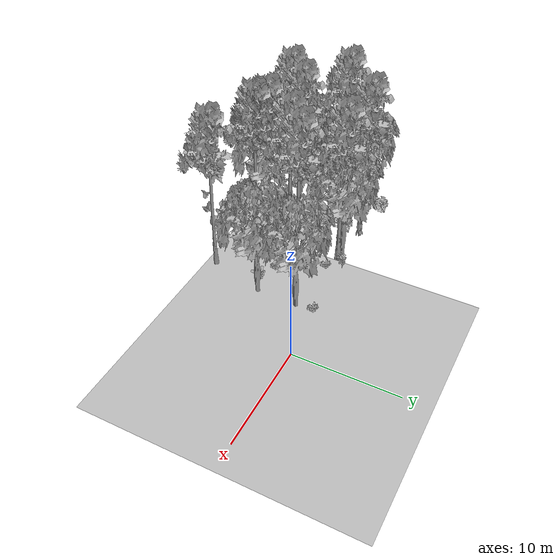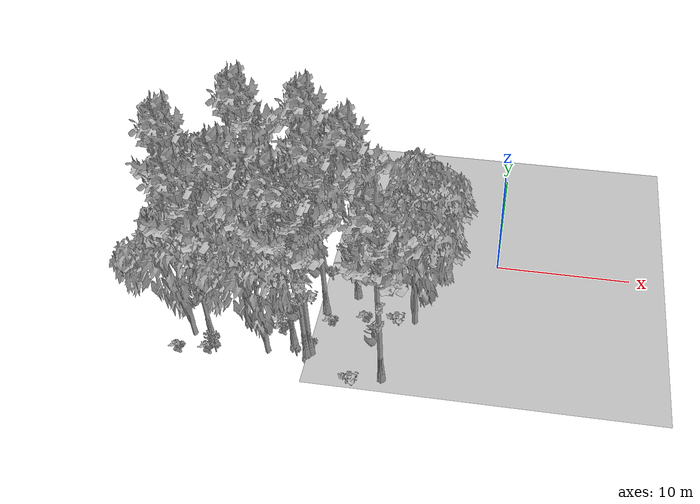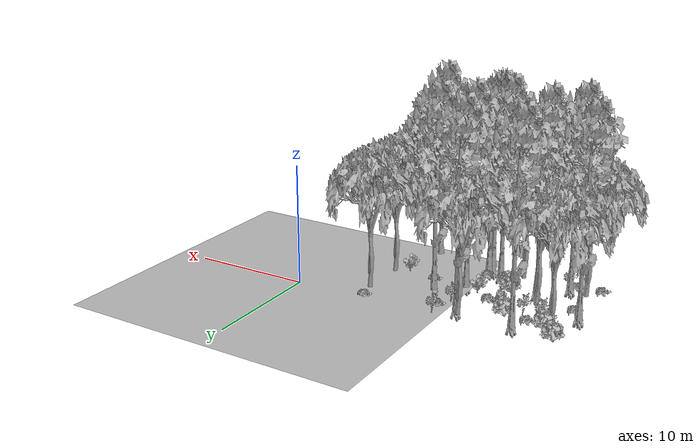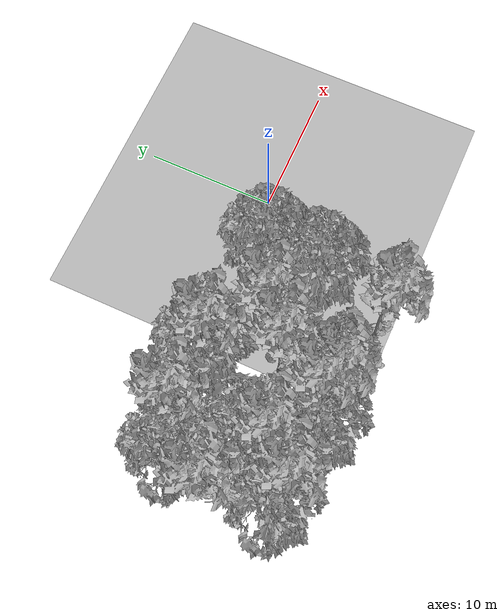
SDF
<sdf version="1.7">
 <world name="default">
  <model name="ground_plane">
   <static>1</static>
   <link name="link">
    <collision name="collision">
     <pose>-50 0 0 0 -0 0</pose>
     <geometry><plane><normal>0 0 1</normal><size>80 80</size></plane></geometry>
     <surface><contact><ode><min_depth>0.01</min_depth><max_vel>0</max_vel></ode></contact></surface>
    </collision>
    <visual name="grass">
     <cast_shadows>0</cast_shadows>
     <geometry>
      <mesh>
       <scale>0.46714285714285714 0.46714285714285714 0.1</scale>
       <uri>file://grass_plane/meshes/grass_plane.dae</uri>
      </mesh>
     </geometry>
    </visual>
   </link>
  </model>
  <model name="Tree 40">
   <static>1</static>
   <pose>-17.46964177701019 -7.906916988267902 0 1.57079 -0 0</pose>
   <link name="link">
    <collision name="collision">
     <geometry><mesh><scale>3.5 5 3.5</scale><uri>model://tree_9/meshes/tree_9.obj</uri></mesh></geometry>
    </collision>
    <visual name="visual">
     <geometry><mesh><scale>3.5 5 3.5</scale><uri>model://tree_9/meshes/tree_9.obj</uri></mesh></geometry>
    </visual>
   </link>
  </model>
  <model name="Tree 52">
   <static>1</static>
   <pose>-5.46918117928891 -2.325376790559446 0 1.57079 -0 0</pose>
   <link name="link">
    <collision name="collision">
     <geometry><mesh><scale>3.5 5 3.5</scale><uri>model://tree_2/meshes/tree_2.obj</uri></mesh></geometry>
    </collision>
    <visual name="visual">
     <geometry><mesh><scale>3.5 5 3.5</scale><uri>model://tree_2/meshes/tree_2.obj</uri></mesh></geometry>
    </visual>
   </link>
  </model>
  <model name="Tree 139">
   <static>1</static>
   <pose>-13.769620851580914 -1.4384604442805866 0 1.57079 -0 0</pose>
   <link name="link">
    <collision name="collision">
     <geometry><mesh><scale>3.5 5 3.5</scale><uri>model://tree_2/meshes/tree_2.obj</uri></mesh></geometry>
    </collision>
    <visual name="visual">
     <geometry><mesh><scale>3.5 5 3.5</scale><uri>model://tree_2/meshes/tree_2.obj</uri></mesh></geometry>
    </visual>
   </link>
  </model>
  <model name="Tree 161">
   <static>1</static>
   <pose>-13.36090814964022 -1.730620432328898 0 1.57079 -0 0</pose>
   <link name="link">
    <collision name="collision">
     <geometry><mesh><scale>3.5 5 3.5</scale><uri>model://tree_9/meshes/tree_9.obj</uri></mesh></geometry>
    </collision>
    <visual name="visual">
     <geometry><mesh><scale>3.5 5 3.5</scale><uri>model://tree_9/meshes/tree_9.obj</uri></mesh></geometry>
    </visual>
   </link>
  </model>
  <model name="Tree 290">
   <static>1</static>
   <pose>-18.04959308913462 -1.433278665243492 0 1.57079 -0 0</pose>
   <link name="link">
    <collision name="collision">
     <geometry><mesh><scale>3.5 5 3.5</scale><uri>model://tree_9/meshes/tree_9.obj</uri></mesh></geometry>
    </collision>
    <visual name="visual">
     <geometry><mesh><scale>3.5 5 3.5</scale><uri>model://tree_9/meshes/tree_9.obj</uri></mesh></geometry>
    </visual>
   </link>
  </model>
  <model name="Tree 292">
   <static>1</static>
   <pose>-21.89682466034512 -5.225030672353093 0 1.57079 -0 0</pose>
   <link name="link">
    <collision name="collision">
     <geometry><mesh><scale>3.5 5 3.5</scale><uri>model://tree_9/meshes/tree_9.obj</uri></mesh></geometry>
    </collision>
    <visual name="visual">
     <geometry><mesh><scale>3.5 5 3.5</scale><uri>model://tree_9/meshes/tree_9.obj</uri></mesh></geometry>
    </visual>
   </link>
  </model>
  <model name="Tree 326">
   <static>1</static>
   <pose>-10.0292760945973 -4.503475192046594 0 1.57079 -0 0</pose>
   <link name="link">
    <collision name="collision">
     <geometry><mesh><scale>3.5 5 3.5</scale><uri>model://tree_9/meshes/tree_9.obj</uri></mesh></geometry>
    </collision>
    <visual name="visual">
     <geometry><mesh><scale>3.5 5 3.5</scale><uri>model://tree_9/meshes/tree_9.obj</uri></mesh></geometry>
    </visual>
   </link>
  </model>
  <model name="Tree 331">
   <static>1</static>
   <pose>-5.598080992758412 -6.292398982118144 0 1.57079 -0 0</pose>
   <link name="link">
    <collision name="collision">
     <geometry><mesh><scale>3.5 5 3.5</scale><uri>model://tree_2/meshes/tree_2.obj</uri></mesh></geometry>
    </collision>
    <visual name="visual">
     <geometry><mesh><scale>3.5 5 3.5</scale><uri>model://tree_2/meshes/tree_2.obj</uri></mesh></geometry>
    </visual>
   </link>
  </model>
  <model name="Tree 337">
   <static>1</static>
   <pose>-18.27190461673678 -6.111677766133482 0 1.57079 -0 0</pose>
   <link name="link">
    <collision name="collision">
     <geometry><mesh><scale>3.5 5 3.5</scale><uri>model://tree_2/meshes/tree_2.obj</uri></mesh></geometry>
    </collision>
    <visual name="visual">
     <geometry><mesh><scale>3.5 5 3.5</scale><uri>model://tree_2/meshes/tree_2.obj</uri></mesh></geometry>
    </visual>
   </link>
  </model>
  <model name="Tree 399">
   <static>1</static>
   <pose>-13.65510305090245 -9.590101952477621 0 1.57079 -0 0</pose>
   <link name="link">
    <collision name="collision">
     <geometry><mesh><scale>3.5 5 3.5</scale><uri>model://tree_9/meshes/tree_9.obj</uri></mesh></geometry>
    </collision>
    <visual name="visual">
     <geometry><mesh><scale>3.5 5 3.5</scale><uri>model://tree_9/meshes/tree_9.obj</uri></mesh></geometry>
    </visual>
   </link>
  </model>
  <model name="Tree 454">
   <static>1</static>
   <pose>-19.490439495273613 -10.065681586697881 0 1.57079 -0 0</pose>
   <link name="link">
    <collision name="collision">
     <geometry><mesh><scale>3.5 5 3.5</scale><uri>model://tree_9/meshes/tree_9.obj</uri></mesh></geometry>
    </collision>
    <visual name="visual">
     <geometry><mesh><scale>3.5 5 3.5</scale><uri>model://tree_9/meshes/tree_9.obj</uri></mesh></geometry>
    </visual>
   </link>
  </model>
  <model name="Tree 458">
   <static>1</static>
   <pose>-12.573957345889664 -10.420235244634917 0 1.57079 -0 0</pose>
   <link name="link">
    <collision name="collision">
     <geometry><mesh><scale>3.5 5 3.5</scale><uri>model://tree_9/meshes/tree_9.obj</uri></mesh></geometry>
    </collision>
    <visual name="visual">
     <geometry><mesh><scale>3.5 5 3.5</scale><uri>model://tree_9/meshes/tree_9.obj</uri></mesh></geometry>
    </visual>
   </link>
  </model>
  <model name="Tree 489">
   <static>1</static>
   <pose>-12.01687951697092 -6.3353486809196085 0 1.57079 -0 0</pose>
   <link name="link">
    <collision name="collision">
     <geometry><mesh><scale>3.5 5 3.5</scale><uri>model://tree_9/meshes/tree_9.obj</uri></mesh></geometry>
    </collision>
    <visual name="visual">
     <geometry><mesh><scale>3.5 5 3.5</scale><uri>model://tree_9/meshes/tree_9.obj</uri></mesh></geometry>
    </visual>
   </link>
  </model>
  <model name="Tree 537">
   <static>1</static>
   <pose>-20.762577693049327 -2.5750962563395134 0 1.57079 -0 0</pose>
   <link name="link">
    <collision name="collision">
     <geometry><mesh><scale>3.5 5 3.5</scale><uri>model://tree_2/meshes/tree_2.obj</uri></mesh></geometry>
    </collision>
    <visual name="visual">
     <geometry><mesh><scale>3.5 5 3.5</scale><uri>model://tree_2/meshes/tree_2.obj</uri></mesh></geometry>
    </visual>
   </link>
  </model>
  <model name="Tree 549">
   <static>1</static>
   <pose>-12.333199887335784 -10.14048898137096 0 1.57079 -0 0</pose>
   <link name="link">
    <collision name="collision">
     <geometry><mesh><scale>3.5 5 3.5</scale><uri>model://tree_9/meshes/tree_9.obj</uri></mesh></geometry>
    </collision>
    <visual name="visual">
     <geometry><mesh><scale>3.5 5 3.5</scale><uri>model://tree_9/meshes/tree_9.obj</uri></mesh></geometry>
    </visual>
   </link>
  </model>
  <model name="Tree 550">
   <static>1</static>
   <pose>-15.473106797555296 -10.417958269104737 0 1.57079 -0 0</pose>
   <link name="link">
    <collision name="collision">
     <geometry><mesh><scale>3.5 5 3.5</scale><uri>model://tree_2/meshes/tree_2.obj</uri></mesh></geometry>
    </collision>
    <visual name="visual">
     <geometry><mesh><scale>3.5 5 3.5</scale><uri>model://tree_2/meshes/tree_2.obj</uri></mesh></geometry>
    </visual>
   </link>
  </model>
  <model name="Tree 593">
   <static>1</static>
   <pose>-7.032797267344076 -11.662203180423091 0 1.57079 -0 0</pose>
   <link name="link">
    <collision name="collision">
     <geometry><mesh><scale>3.5 5 3.5</scale><uri>model://tree_9/meshes/tree_9.obj</uri></mesh></geometry>
    </collision>
    <visual name="visual">
     <geometry><mesh><scale>3.5 5 3.5</scale><uri>model://tree_9/meshes/tree_9.obj</uri></mesh></geometry>
    </visual>
   </link>
  </model>
  <model name="Tree 614">
   <static>1</static>
   <pose>-21.087583648458114 -9.60441424043114 0 1.57079 -0 0</pose>
   <link name="link">
    <collision name="collision">
     <geometry><mesh><scale>3.5 5 3.5</scale><uri>model://tree_2/meshes/tree_2.obj</uri></mesh></geometry>
    </collision>
    <visual name="visual">
     <geometry><mesh><scale>3.5 5 3.5</scale><uri>model://tree_2/meshes/tree_2.obj</uri></mesh></geometry>
    </visual>
   </link>
  </model>
  <model name="Bush 21">
   <static>1</static>
   <pose>-17.957780730780737 -3.832655094657291 0 1.57079 -0 0</pose>
   <link name="link">
    <collision name="collision">
     <geometry><mesh><scale>2 2 2</scale><uri>model://bush_5/meshes/bush_5.obj</uri></mesh></geometry>
     <surface><contact><collide_without_contact>false</collide_without_contact></contact></surface>
    </collision>
    <visual name="visual">
     <geometry><mesh><scale>2 2 2</scale><uri>model://bush_5/meshes/bush_5.obj</uri></mesh></geometry>
    </visual>
   </link>
  </model>
  <model name="Bush 60">
   <static>1</static>
   <pose>-14.949112160528781 -7.840530877242728 0 1.57079 -0 0</pose>
   <link name="link">
    <collision name="collision">
     <geometry><mesh><scale>2 2 2</scale><uri>model://bush_2/meshes/bush_2.obj</uri></mesh></geometry>
     <surface><contact><collide_without_contact>false</collide_without_contact></contact></surface>
    </collision>
    <visual name="visual">
     <geometry><mesh><scale>2 2 2</scale><uri>model://bush_2/meshes/bush_2.obj</uri></mesh></geometry>
    </visual>
   </link>
  </model>
  <model name="Bush 63">
   <static>1</static>
   <pose>-21.922948447984382 -10.916194345363763 0 1.57079 -0 0</pose>
   <link name="link">
    <collision name="collision">
     <geometry><mesh><scale>2 2 2</scale><uri>model://bush_2/meshes/bush_2.obj</uri></mesh></geometry>
     <surface><contact><collide_without_contact>false</collide_without_contact></contact></surface>
    </collision>
    <visual name="visual">
     <geometry><mesh><scale>2 2 2</scale><uri>model://bush_2/meshes/bush_2.obj</uri></mesh></geometry>
    </visual>
   </link>
  </model>
  <model name="Bush 107">
   <static>1</static>
   <pose>-16.026605184659335 -4.225966472178854 0 1.57079 -0 0</pose>
   <link name="link">
    <collision name="collision">
     <geometry><mesh><scale>2 2 2</scale><uri>model://bush_4/meshes/bush_4.obj</uri></mesh></geometry>
     <surface><contact><collide_without_contact>false</collide_without_contact></contact></surface>
    </collision>
    <visual name="visual">
     <geometry><mesh><scale>2 2 2</scale><uri>model://bush_4/meshes/bush_4.obj</uri></mesh></geometry>
    </visual>
   </link>
  </model>
  <model name="Bush 222">
   <static>1</static>
   <pose>-9.030153037105435 -12.379777222157067 0 1.57079 -0 0</pose>
   <link name="link">
    <collision name="collision">
     <geometry><mesh><scale>2 2 2</scale><uri>model://bush_0/meshes/bush_0.obj</uri></mesh></geometry>
     <surface><contact><collide_without_contact>false</collide_without_contact></contact></surface>
    </collision>
    <visual name="visual">
     <geometry><mesh><scale>2 2 2</scale><uri>model://bush_0/meshes/bush_0.obj</uri></mesh></geometry>
    </visual>
   </link>
  </model>
  <model name="Bush 233">
   <static>1</static>
   <pose>-15.693984346911666 -7.039412629135754 0 1.57079 -0 0</pose>
   <link name="link">
    <collision name="collision">
     <geometry><mesh><scale>2 2 2</scale><uri>model://bush_1/meshes/bush_1.obj</uri></mesh></geometry>
     <surface><contact><collide_without_contact>false</collide_without_contact></contact></surface>
    </collision>
    <visual name="visual">
     <geometry><mesh><scale>2 2 2</scale><uri>model://bush_1/meshes/bush_1.obj</uri></mesh></geometry>
    </visual>
   </link>
  </model>
  <model name="Bush 242">
   <static>1</static>
   <pose>-11.557507187133105 -2.1984086079035876 0 1.57079 -0 0</pose>
   <link name="link">
    <collision name="collision">
     <geometry><mesh><scale>2 2 2</scale><uri>model://bush_2/meshes/bush_2.obj</uri></mesh></geometry>
     <surface><contact><collide_without_contact>false</collide_without_contact></contact></surface>
    </collision>
    <visual name="visual">
     <geometry><mesh><scale>2 2 2</scale><uri>model://bush_2/meshes/bush_2.obj</uri></mesh></geometry>
    </visual>
   </link>
  </model>
  <model name="Bush 244">
   <static>1</static>
   <pose>-15.373849325560965 -7.545190952870442 0 1.57079 -0 0</pose>
   <link name="link">
    <collision name="collision">
     <geometry><mesh><scale>2 2 2</scale><uri>model://bush_1/meshes/bush_1.obj</uri></mesh></geometry>
     <surface><contact><collide_without_contact>false</collide_without_contact></contact></surface>
    </collision>
    <visual name="visual">
     <geometry><mesh><scale>2 2 2</scale><uri>model://bush_1/meshes/bush_1.obj</uri></mesh></geometry>
    </visual>
   </link>
  </model>
  <model name="Bush 261">
   <static>1</static>
   <pose>-11.843837528916804 -0.6056790374147738 0 1.57079 -0 0</pose>
   <link name="link">
    <collision name="collision">
     <geometry><mesh><scale>2 2 2</scale><uri>model://bush_5/meshes/bush_5.obj</uri></mesh></geometry>
     <surface><contact><collide_without_contact>false</collide_without_contact></contact></surface>
    </collision>
    <visual name="visual">
     <geometry><mesh><scale>2 2 2</scale><uri>model://bush_5/meshes/bush_5.obj</uri></mesh></geometry>
    </visual>
   </link>
  </model>
  <model name="Bush 286">
   <static>1</static>
   <pose>-9.183686208676615 -6.362397106896566 0 1.57079 -0 0</pose>
   <link name="link">
    <collision name="collision">
     <geometry><mesh><scale>2 2 2</scale><uri>model://bush_2/meshes/bush_2.obj</uri></mesh></geometry>
     <surface><contact><collide_without_contact>false</collide_without_contact></contact></surface>
    </collision>
    <visual name="visual">
     <geometry><mesh><scale>2 2 2</scale><uri>model://bush_2/meshes/bush_2.obj</uri></mesh></geometry>
    </visual>
   </link>
  </model>
  <model name="Bush 312">
   <static>1</static>
   <pose>-18.64160350994432 -3.012924038643341 0 1.57079 -0 0</pose>
   <link name="link">
    <collision name="collision">
     <geometry><mesh><scale>2 2 2</scale><uri>model://bush_2/meshes/bush_2.obj</uri></mesh></geometry>
     <surface><contact><collide_without_contact>false</collide_without_contact></contact></surface>
    </collision>
    <visual name="visual">
     <geometry><mesh><scale>2 2 2</scale><uri>model://bush_2/meshes/bush_2.obj</uri></mesh></geometry>
    </visual>
   </link>
  </model>
  <model name="Bush 318">
   <static>1</static>
   <pose>-12.258128491454642 -3.0917972667311773 0 1.57079 -0 0</pose>
   <link name="link">
    <collision name="collision">
     <geometry><mesh><scale>2 2 2</scale><uri>model://bush_5/meshes/bush_5.obj</uri></mesh></geometry>
     <surface><contact><collide_without_contact>false</collide_without_contact></contact></surface>
    </collision>
    <visual name="visual">
     <geometry><mesh><scale>2 2 2</scale><uri>model://bush_5/meshes/bush_5.obj</uri></mesh></geometry>
    </visual>
   </link>
  </model>
  <model name="Bush 334">
   <static>1</static>
   <pose>-11.583764157025186 -7.04612678093477 0 1.57079 -0 0</pose>
   <link name="link">
    <collision name="collision">
     <geometry><mesh><scale>2 2 2</scale><uri>model://bush_2/meshes/bush_2.obj</uri></mesh></geometry>
     <surface><contact><collide_without_contact>false</collide_without_contact></contact></surface>
    </collision>
    <visual name="visual">
     <geometry><mesh><scale>2 2 2</scale><uri>model://bush_2/meshes/bush_2.obj</uri></mesh></geometry>
    </visual>
   </link>
  </model>
  <model name="Bush 349">
   <static>1</static>
   <pose>-21.54716206109554 -0.8002468169911197 0 1.57079 -0 0</pose>
   <link name="link">
    <collision name="collision">
     <geometry><mesh><scale>2 2 2</scale><uri>model://bush_1/meshes/bush_1.obj</uri></mesh></geometry>
     <surface><contact><collide_without_contact>false</collide_without_contact></contact></surface>
    </collision>
    <visual name="visual">
     <geometry><mesh><scale>2 2 2</scale><uri>model://bush_1/meshes/bush_1.obj</uri></mesh></geometry>
    </visual>
   </link>
  </model>
  <model name="Bush 352">
   <static>1</static>
   <pose>-19.44468399493316 -3.736071873567383 0 1.57079 -0 0</pose>
   <link name="link">
    <collision name="collision">
     <geometry><mesh><scale>2 2 2</scale><uri>model://bush_5/meshes/bush_5.obj</uri></mesh></geometry>
     <surface><contact><collide_without_contact>false</collide_without_contact></contact></surface>
    </collision>
    <visual name="visual">
     <geometry><mesh><scale>2 2 2</scale><uri>model://bush_5/meshes/bush_5.obj</uri></mesh></geometry>
    </visual>
   </link>
  </model>
  <model name="Bush 372">
   <static>1</static>
   <pose>-14.950000317065342 -8.281889410570855 0 1.57079 -0 0</pose>
   <link name="link">
    <collision name="collision">
     <geometry><mesh><scale>2 2 2</scale><uri>model://bush_2/meshes/bush_2.obj</uri></mesh></geometry>
     <surface><contact><collide_without_contact>false</collide_without_contact></contact></surface>
    </collision>
    <visual name="visual">
     <geometry><mesh><scale>2 2 2</scale><uri>model://bush_2/meshes/bush_2.obj</uri></mesh></geometry>
    </visual>
   </link>
  </model>
  <model name="Bush 381">
   <static>1</static>
   <pose>-12.621226514927063 -9.28283423702662 0 1.57079 -0 0</pose>
   <link name="link">
    <collision name="collision">
     <geometry><mesh><scale>2 2 2</scale><uri>model://bush_2/meshes/bush_2.obj</uri></mesh></geometry>
     <surface><contact><collide_without_contact>false</collide_without_contact></contact></surface>
    </collision>
    <visual name="visual">
     <geometry><mesh><scale>2 2 2</scale><uri>model://bush_2/meshes/bush_2.obj</uri></mesh></geometry>
    </visual>
   </link>
  </model>
  <model name="Bush 398">
   <static>1</static>
   <pose>-6.6672345392946895 -6.746978034589972 0 1.57079 -0 0</pose>
   <link name="link">
    <collision name="collision">
     <geometry><mesh><scale>2 2 2</scale><uri>model://bush_0/meshes/bush_0.obj</uri></mesh></geometry>
     <surface><contact><collide_without_contact>false</collide_without_contact></contact></surface>
    </collision>
    <visual name="visual">
     <geometry><mesh><scale>2 2 2</scale><uri>model://bush_0/meshes/bush_0.obj</uri></mesh></geometry>
    </visual>
   </link>
  </model>
  <model name="Bush 411">
   <static>1</static>
   <pose>-20.525610378575625 -2.427844190410582 0 1.57079 -0 0</pose>
   <link name="link">
    <collision name="collision">
     <geometry><mesh><scale>2 2 2</scale><uri>model://bush_5/meshes/bush_5.obj</uri></mesh></geometry>
     <surface><contact><collide_without_contact>false</collide_without_contact></contact></surface>
    </collision>
    <visual name="visual">
     <geometry><mesh><scale>2 2 2</scale><uri>model://bush_5/meshes/bush_5.obj</uri></mesh></geometry>
    </visual>
   </link>
  </model>
  <model name="Bush 414">
   <static>1</static>
   <pose>-19.81773018132668 -10.712731450693937 0 1.57079 -0 0</pose>
   <link name="link">
    <collision name="collision">
     <geometry><mesh><scale>2 2 2</scale><uri>model://bush_2/meshes/bush_2.obj</uri></mesh></geometry>
     <surface><contact><collide_without_contact>false</collide_without_contact></contact></surface>
    </collision>
    <visual name="visual">
     <geometry><mesh><scale>2 2 2</scale><uri>model://bush_2/meshes/bush_2.obj</uri></mesh></geometry>
    </visual>
   </link>
  </model>
  <model name="Bush 423">
   <static>1</static>
   <pose>-20.418872959124986 -2.1897934406631308 0 1.57079 -0 0</pose>
   <link name="link">
    <collision name="collision">
     <geometry><mesh><scale>2 2 2</scale><uri>model://bush_1/meshes/bush_1.obj</uri></mesh></geometry>
     <surface><contact><collide_without_contact>false</collide_without_contact></contact></surface>
    </collision>
    <visual name="visual">
     <geometry><mesh><scale>2 2 2</scale><uri>model://bush_1/meshes/bush_1.obj</uri></mesh></geometry>
    </visual>
   </link>
  </model>
  <model name="Bush 435">
   <static>1</static>
   <pose>-14.577809911907124 -5.052398177728783 0 1.57079 -0 0</pose>
   <link name="link">
    <collision name="collision">
     <geometry><mesh><scale>2 2 2</scale><uri>model://bush_2/meshes/bush_2.obj</uri></mesh></geometry>
     <surface><contact><collide_without_contact>false</collide_without_contact></contact></surface>
    </collision>
    <visual name="visual">
     <geometry><mesh><scale>2 2 2</scale><uri>model://bush_2/meshes/bush_2.obj</uri></mesh></geometry>
    </visual>
   </link>
  </model>
  <model name="Bush 442">
   <static>1</static>
   <pose>-21.139636235533935 -6.481417688276778 0 1.57079 -0 0</pose>
   <link name="link">
    <collision name="collision">
     <geometry><mesh><scale>2 2 2</scale><uri>model://bush_2/meshes/bush_2.obj</uri></mesh></geometry>
     <surface><contact><collide_without_contact>false</collide_without_contact></contact></surface>
    </collision>
    <visual name="visual">
     <geometry><mesh><scale>2 2 2</scale><uri>model://bush_2/meshes/bush_2.obj</uri></mesh></geometry>
    </visual>
   </link>
  </model>
  <model name="Bush 487">
   <static>1</static>
   <pose>-16.91892796854641 -2.8025522872203723 0 1.57079 -0 0</pose>
   <link name="link">
    <collision name="collision">
     <geometry><mesh><scale>2 2 2</scale><uri>model://bush_1/meshes/bush_1.obj</uri></mesh></geometry>
     <surface><contact><collide_without_contact>false</collide_without_contact></contact></surface>
    </collision>
    <visual name="visual">
     <geometry><mesh><scale>2 2 2</scale><uri>model://bush_1/meshes/bush_1.obj</uri></mesh></geometry>
    </visual>
   </link>
  </model>
  <model name="Bush 544">
   <static>1</static>
   <pose>-5.752268146514581 -0.7497048456359678 0 1.57079 -0 0</pose>
   <link name="link">
    <collision name="collision">
     <geometry><mesh><scale>2 2 2</scale><uri>model://bush_2/meshes/bush_2.obj</uri></mesh></geometry>
     <surface><contact><collide_without_contact>false</collide_without_contact></contact></surface>
    </collision>
    <visual name="visual">
     <geometry><mesh><scale>2 2 2</scale><uri>model://bush_2/meshes/bush_2.obj</uri></mesh></geometry>
    </visual>
   </link>
  </model>
  <model name="Bush 559">
   <static>1</static>
   <pose>-13.361710824750265 -5.666476192527199 0 1.57079 -0 0</pose>
   <link name="link">
    <collision name="collision">
     <geometry><mesh><scale>2 2 2</scale><uri>model://bush_0/meshes/bush_0.obj</uri></mesh></geometry>
     <surface><contact><collide_without_contact>false</collide_without_contact></contact></surface>
    </collision>
    <visual name="visual">
     <geometry><mesh><scale>2 2 2</scale><uri>model://bush_0/meshes/bush_0.obj</uri></mesh></geometry>
    </visual>
   </link>
  </model>
  <model name="Bush 578">
   <static>1</static>
   <pose>-19.3123453896501 -10.348286171081782 0 1.57079 -0 0</pose>
   <link name="link">
    <collision name="collision">
     <geometry><mesh><scale>2 2 2</scale><uri>model://bush_5/meshes/bush_5.obj</uri></mesh></geometry>
     <surface><contact><collide_without_contact>false</collide_without_contact></contact></surface>
    </collision>
    <visual name="visual">
     <geometry><mesh><scale>2 2 2</scale><uri>model://bush_5/meshes/bush_5.obj</uri></mesh></geometry>
    </visual>
   </link>
  </model>
 </world>
</sdf>
